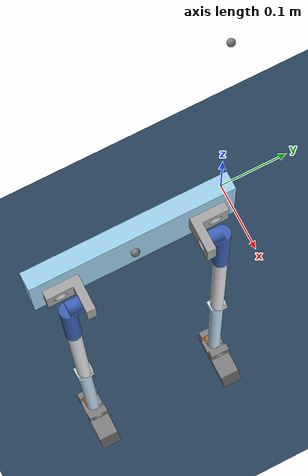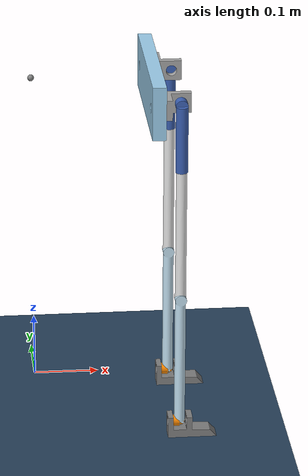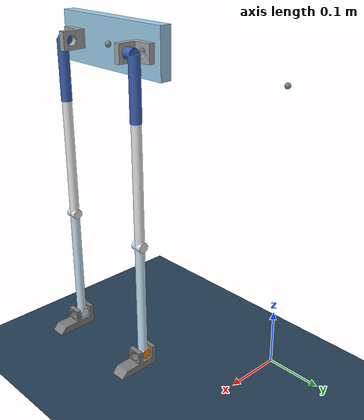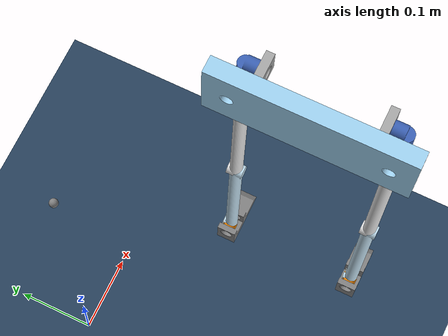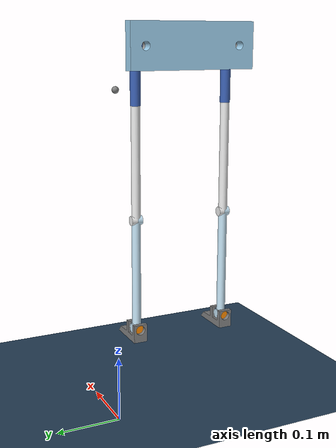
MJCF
<mujoco model="scene">
    <include file="robot.xml"/>

    <visual>
        <headlight diffuse="0.6 0.6 0.6" ambient="0.3 0.3 0.3" specular="0 0 0"/>
        <rgba haze="0.15 0.25 0.35 1"/>
        <global azimuth="160" elevation="-20"/>
    </visual>

    <asset>
        <texture type="skybox" builtin="gradient" rgb1="0.3 0.5 0.7" rgb2="0 0 0" width="512" height="3072"/>
        <texture type="2d" name="groundplane" builtin="checker" mark="edge" rgb1="0.2 0.3 0.4" rgb2="0.1 0.2 0.3"
            markrgb="0.8 0.8 0.8" width="300" height="300"/>
        <material name="groundplane" texture="groundplane" texuniform="true" texrepeat="5 5" reflectance="0.2"/>
    </asset>

    <worldbody>
        <body name="floor">
            <light pos="0 0 3.5" dir="0 0 -1" directional="true"/>
            <geom name="floor" size="0 0 0.05" pos="0 0 0" type="plane" material="groundplane"/>
        </body>
    </worldbody>

    <keyframe>
        <key name="home"
            qpos="
    0 0 0.5
    1 0 0 0
    0.0
    0.0
    0.0
    0.0
    0.0
    0.0
    0.0
    0.0
    0.0
    0.0
    0.0
    0.0
"
            ctrl="
    0.0
    0.0
    0.0
    0.0
    0.0
    0.0
    0.0
    0.0
    0.0
    0.0
    0.0
    0.0
          "/>
    </keyframe>
</mujoco>

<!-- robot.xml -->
<!-- Generated using onshape-to-robot -->
<!-- OnShape document_id: e804ad521de5849fb5d906f3 -->
<mujoco model="hopejr">
    <option iterations="1" ls_iterations="5">
        <flag eulerdamp="disable"/>
    </option>
    <compiler angle="radian" meshdir="assets"/>
    <default>
        <default class="hopejr">
            <joint damping="0.5" frictionloss="0.1" armature="0.02"/>
            <position kp="10"/>
            <geom contype="0" conaffinity="0"/>
        </default>
    </default>
    <worldbody>
        <!-- Link part_1 -->
        <body name="part_1" pos="0 0 0.5" quat="1 0 0 0" childclass="hopejr">
            <freejoint name="part_1_freejoint"/>
            <site name="imu" pos="0 0 0"/>
            <inertial pos="0.165033 -0.204503 0.0575783" mass="0.451164"
                fullinertia="0.00220527 0.000260248 0.0019751 5.24043e-21 2.60518e-20 -7.22333e-20"/>
            <!-- Part part_1 -->
            <!-- Mesh part_1 -->
            <geom type="mesh" pos="0.155033 -0.204503 0.0575783" quat="0.707107 -1.24826e-16 1.11022e-16 0.707107"
                mesh="part_1" material="part_1_material"/>
            <!-- Mesh part_1 -->
            <geom type="mesh" pos="0.155033 -0.204503 0.0575783" quat="0.707107 -1.24826e-16 1.11022e-16 0.707107"
                mesh="part_1" material="part_1_material"/>
            <!-- Frame trunk (dummy link + fixed joint) -->
            <site name="trunk" pos="0.177533 -0.204503 0.0575783" quat="1 -5.55112e-17 2.22045e-16 1.34714e-18"/>
            <!-- Link part_2 -->
            <body name="part_2" pos="0.175033 -0.117003 0.0575783" quat="0.5 -0.5 -0.5 0.5">
                <!-- Joint from part_1 to part_2 -->
                <joint name="left_hip_roll" type="hinge" range="-0.7853981633974483 0.7853981633974483"/>
                <inertial pos="-0.0116006 2.25352e-19 -0.0131167" mass="0.0215278"
                    fullinertia="4.88403e-06 6.00093e-06 4.91185e-06 1.27448e-37 -1.46767e-06 -3.09513e-38"/>
                <!-- Part part_2 -->
                <!-- Mesh part_2 -->
                <geom type="mesh" pos="-0.0875 -1.38778e-17 0.02" quat="0.707107 0.707107 -0 -2.79664e-35" mesh="part_2"
                    material="part_2_material"/>
                <!-- Mesh part_2 -->
                <geom type="mesh" pos="-0.0875 -1.38778e-17 0.02" quat="0.707107 0.707107 -0 -2.79664e-35" mesh="part_2"
                    material="part_2_material"/>
                <!-- Link part_3 -->
                <body name="part_3" pos="-0.015 -1.38778e-17 -0.025" quat="0.707107 -4.15832e-16 -0.707107 -8.88178e-16">
                    <!-- Joint from part_2 to part_3 -->
                    <joint name="left_hip_pitch" type="hinge" range="-0.3490658503988659 1.5707963267948966"/>
                    <inertial pos="3.40913e-09 0.0448354 -0.0141247" mass="0.0353649"
                        fullinertia="3.59567e-05 1.66969e-06 3.57291e-05 1.41653e-11 2.91851e-11 1.40753e-06"/>
                    <!-- Part part_3 -->
                    <!-- Mesh part_3 -->
                    <geom type="mesh" pos="0.045 -6.245e-17 0.0725" quat="0.5 0.5 0.5 -0.5" mesh="part_3"
                        material="part_3_material"/>
                    <!-- Mesh part_3 -->
                    <geom type="mesh" pos="0.045 -6.245e-17 0.0725" quat="0.5 0.5 0.5 -0.5" mesh="part_3"
                        material="part_3_material"/>
                    <!-- Link part_4 -->
                    <body name="part_4" pos="0 0.1 -0.015" quat="0.5 0.5 0.5 -0.5">
                        <!-- Joint from part_3 to part_4 -->
                        <joint name="left_hip_yaw" type="hinge" range="-2.6179938779914944 2.6179938779914944"/>
                        <inertial pos="0.000209384 8.57718e-09 -0.103723" mass="0.0521727"
                            fullinertia="0.000187482 0.00018752 1.72388e-06 -7.06323e-13 1.06442e-06 3.38151e-11"/>
                        <!-- Part part_4 -->
                        <!-- Mesh part_4 -->
                        <geom type="mesh" pos="-0.0875 0.045 0.1" quat="1 0 -1.44284e-18 -3.65021e-20" mesh="part_4"
                            material="part_4_material"/>
                        <!-- Mesh part_4 -->
                        <geom type="mesh" pos="-0.0875 0.045 0.1" quat="1 0 -1.44284e-18 -3.65021e-20" mesh="part_4"
                            material="part_4_material"/>
                        <!-- Link part_5 -->
                        <body name="part_5" pos="0 0 -0.2" quat="0.5 0.5 0.5 0.5">
                            <!-- Joint from part_4 to part_5 -->
                            <joint name="left_knee" type="hinge" range="0.0 1.5707963267948966"/>
                            <inertial pos="-4.29344e-08 -0.1 1.42274e-08" mass="0.0540806"
                                fullinertia="0.000208137 1.84387e-06 0.000208057 7.1479e-11 9.65571e-12 2.21017e-06"/>
                            <!-- Part part_5 -->
                            <!-- Mesh part_5 -->
                            <geom type="mesh" pos="0.045 0.3 -0.0875" quat="0.5 -0.5 -0.5 -0.5" mesh="part_5"
                                material="part_5_material"/>
                            <!-- Mesh part_5 -->
                            <geom type="mesh" pos="0.045 0.3 -0.0875" quat="0.5 -0.5 -0.5 -0.5" mesh="part_5"
                                material="part_5_material"/>
                            <!-- Link part_6 -->
                            <body name="part_6" pos="4.16334e-16 -0.2 0.01"
                                quat="5.53064e-17 -5.20417e-18 1.10818e-16 1">
                                <!-- Joint from part_5 to part_6 -->
                                <joint name="left_ankle_pitch" type="hinge"
                                    range="-1.5707963267948966 1.5707963267948966"/>
                                <inertial pos="-0.00222383 0 -0.00777617" mass="0.00465095"
                                    fullinertia="1.90809e-07 2.06197e-07 1.90809e-07 2.10229e-12 -3.77922e-08 2.10229e-12"/>
                                <!-- Part part_6 -->
                                <!-- Mesh part_6 -->
                                <geom type="mesh" pos="0.045 -0.5 0.0775" quat="0.5 0.5 0.5 -0.5" mesh="part_6"
                                    material="part_6_material"/>
                                <!-- Mesh part_6 -->
                                <geom type="mesh" pos="0.045 -0.5 0.0775" quat="0.5 0.5 0.5 -0.5" mesh="part_6"
                                    material="part_6_material"/>
                                <!-- Link part_7 -->
                                <body name="part_7" pos="-0.01 0 -0.01"
                                    quat="0.707107 1.03325e-16 0.707107 -2.22045e-16">
                                    <!-- Joint from part_6 to part_7 -->
                                    <joint name="left_ankle_roll" type="hinge"
                                        range="-0.7853981633974483 0.7853981633974483"/>
                                    <inertial pos="-3.76166e-09 0.0136645 0.0226826" mass="0.0306953"
                                        fullinertia="1.34934e-05 1.34204e-05 3.57951e-06 -3.33658e-12 3.03112e-13 -1.34506e-06"/>
                                    <!-- Part part_7 -->
                                    <!-- Mesh part_7 -->
                                    <geom type="mesh" pos="-0.0875 -0.5 0.055" quat="0.707107 0.707107 -0 1.96673e-33"
                                        mesh="part_7" material="part_7_material"/>
                                    <!-- Mesh part_7 -->
                                    <geom type="mesh" pos="-0.0875 -0.5 0.055" quat="0.707107 0.707107 -0 1.96673e-33"
                                        mesh="part_7" material="part_7_material" name="left_foot_bottom" contype="0"
                                        conaffinity="1" solimp="0.015 1 0.031" friction="0.8 0.02 0.01"/>
                                    <!-- Frame left_foot (dummy link + fixed joint) -->
                                    <site name="left_foot" pos="-5.55112e-17 0.0200185 0.028571" quat="0.5 0.5 -0.5 0.5"/>
                                </body>
                            </body>
                        </body>
                    </body>
                </body>
            </body>
            <!-- Link part_2_2 -->
            <body name="part_2_2" pos="0.175033 -0.292003 0.0575783" quat="0.5 0.5 -0.5 -0.5">
                <!-- Joint from part_1 to part_2_2 -->
                <joint name="right_hip_roll" type="hinge" range="-0.7853981633974483 0.7853981633974483"/>
                <inertial pos="-0.0116006 2.25352e-19 -0.0131167" mass="0.0215278"
                    fullinertia="4.88403e-06 6.00093e-06 4.91185e-06 0 -1.46767e-06 0"/>
                <!-- Part part_2_2 -->
                <!-- Mesh part_2_2 -->
                <geom type="mesh" pos="-0.0875 -1.38778e-17 0.02" quat="0.707107 0.707107 0 1.0358e-34" mesh="part_2"
                    material="part_2_material"/>
                <!-- Mesh part_2_2 -->
                <geom type="mesh" pos="-0.0875 -1.38778e-17 0.02" quat="0.707107 0.707107 0 1.0358e-34" mesh="part_2"
                    material="part_2_material"/>
                <!-- Link part_3_2 -->
                <body name="part_3_2" pos="-0.015 4.85723e-17 -0.025" quat="3.23091e-16 -0.707107 4.44089e-16 0.707107">
                    <!-- Joint from part_2_2 to part_3_2 -->
                    <joint name="right_hip_pitch" type="hinge" range="-1.5707963267948966 0.3490658503988659"/>
                    <inertial pos="3.40913e-09 0.0448354 -0.0141247" mass="0.0353649"
                        fullinertia="3.59567e-05 1.66969e-06 3.57291e-05 1.41653e-11 2.91851e-11 1.40753e-06"/>
                    <!-- Part part_3_2 -->
                    <!-- Mesh part_3_2 -->
                    <geom type="mesh" pos="0.045 -6.245e-17 0.0725" quat="0.5 0.5 0.5 -0.5" mesh="part_3"
                        material="part_3_material"/>
                    <!-- Mesh part_3_2 -->
                    <geom type="mesh" pos="0.045 -6.245e-17 0.0725" quat="0.5 0.5 0.5 -0.5" mesh="part_3"
                        material="part_3_material"/>
                    <!-- Link part_4_2 -->
                    <body name="part_4_2" pos="8.32667e-16 0.1 -0.015" quat="0.5 0.5 -0.5 0.5">
                        <!-- Joint from part_3_2 to part_4_2 -->
                        <joint name="right_hip_yaw" type="hinge" range="-2.6179938779914935 2.6179938779914953"/>
                        <inertial pos="0.000209384 8.57718e-09 -0.103723" mass="0.0521727"
                            fullinertia="0.000187482 0.00018752 1.72388e-06 -7.06323e-13 1.06442e-06 3.38151e-11"/>
                        <!-- Part part_4_2 -->
                        <!-- Mesh part_4_2 -->
                        <geom type="mesh" pos="-0.0875 0.045 0.1" quat="1 0 0 0" mesh="part_4"
                            material="part_4_material"/>
                        <!-- Mesh part_4_2 -->
                        <geom type="mesh" pos="-0.0875 0.045 0.1" quat="1 0 0 0" mesh="part_4"
                            material="part_4_material"/>
                        <!-- Link part_5_2 -->
                        <body name="part_5_2" pos="0 5.55112e-17 -0.2" quat="0.5 0.5 0.5 0.5">
                            <!-- Joint from part_4_2 to part_5_2 -->
                            <joint name="right_knee" type="hinge" range="0.0 1.5707963267948966"/>
                            <inertial pos="-4.29344e-08 -0.1 1.42274e-08" mass="0.0540806"
                                fullinertia="0.000208137 1.84387e-06 0.000208057 7.1479e-11 9.65571e-12 2.21017e-06"/>
                            <!-- Part part_5_2 -->
                            <!-- Mesh part_5_2 -->
                            <geom type="mesh" pos="0.045 0.3 -0.0875" quat="0.5 -0.5 -0.5 -0.5" mesh="part_5"
                                material="part_5_material"/>
                            <!-- Mesh part_5_2 -->
                            <geom type="mesh" pos="0.045 0.3 -0.0875" quat="0.5 -0.5 -0.5 -0.5" mesh="part_5"
                                material="part_5_material"/>
                            <!-- Link part_6_2 -->
                            <body name="part_6_2" pos="1.4988e-15 -0.2 0.01" quat="1.35778e-32 0 -6.71617e-19 -1">
                                <!-- Joint from part_5_2 to part_6_2 -->
                                <joint name="right_ankle_pitch" type="hinge"
                                    range="-1.5707963267948966 1.5707963267948966"/>
                                <inertial pos="-0.00222383 5.55112e-17 -0.00777617" mass="0.00465095"
                                    fullinertia="1.90809e-07 2.06197e-07 1.90809e-07 2.10229e-12 -3.77922e-08 2.10229e-12"/>
                                <!-- Part part_6_2 -->
                                <!-- Mesh part_6_2 -->
                                <geom type="mesh" pos="0.045 -0.5 0.0775" quat="0.5 0.5 0.5 -0.5" mesh="part_6"
                                    material="part_6_material"/>
                                <!-- Mesh part_6_2 -->
                                <geom type="mesh" pos="0.045 -0.5 0.0775" quat="0.5 0.5 0.5 -0.5" mesh="part_6"
                                    material="part_6_material"/>
                                <!-- Link part_7_2 -->
                                <body name="part_7_2" pos="-0.01 1.11022e-16 -0.01"
                                    quat="0.707107 -1.54701e-17 0.707107 -1.11022e-16">
                                    <!-- Joint from part_6_2 to part_7_2 -->
                                    <joint name="right_ankle_roll" type="hinge"
                                        range="-0.7853981633974474 0.7853981633974492"/>
                                    <inertial pos="-3.76166e-09 0.0136645 0.0226826" mass="0.0306953"
                                        fullinertia="1.34934e-05 1.34204e-05 3.57951e-06 -3.33658e-12 3.03112e-13 -1.34506e-06"/>
                                    <!-- Part part_7_2 -->
                                    <!-- Mesh part_7_2 -->
                                    <geom type="mesh" pos="-0.0875 -0.5 0.055" quat="0.707107 0.707107 -0 8.03651e-33"
                                        mesh="part_7" material="part_7_material"/>
                                    <!-- Mesh part_7_2 -->
                                    <geom type="mesh" pos="-0.0875 -0.5 0.055" quat="0.707107 0.707107 -0 8.03651e-33"
                                        mesh="part_7" material="part_7_material" name="right_foot_bottom" contype="0"
                                        conaffinity="1" solimp="0.015 1 0.031" friction="0.8 0.02 0.01"/>
                                    <!-- Frame right_foot (dummy link + fixed joint) -->
                                    <site name="right_foot" pos="-5.55112e-17 0.0200185 0.028571"
                                        quat="0.5 0.5 -0.5 0.5"/>
                                </body>
                            </body>
                        </body>
                    </body>
                </body>
            </body>
        </body>
    </worldbody>
    <asset>
        <mesh file="part_5.stl"/>
        <mesh file="part_3.stl"/>
        <mesh file="part_2.stl"/>
        <mesh file="part_4.stl"/>
        <mesh file="part_1.stl"/>
        <mesh file="part_6.stl"/>
        <mesh file="part_7.stl"/>
        <material name="part_1_material" rgba="0.615686 0.811765 0.929412 1"/>
        <material name="part_2_material" rgba="0.647059 0.647059 0.647059 1"/>
        <material name="part_3_material" rgba="0.231373 0.380392 0.705882 1"/>
        <material name="part_4_material" rgba="0.917647 0.917647 0.917647 1"/>
        <material name="part_5_material" rgba="0.768627 0.886275 0.952941 1"/>
        <material name="part_6_material" rgba="0.972549 0.529412 0.00392157 1"/>
        <material name="part_7_material" rgba="0.498039 0.498039 0.498039 1"/>
    </asset>
    <actuator>
        <position class="hopejr" name="left_hip_roll" joint="left_hip_roll"
            ctrlrange="-0.7853981633974483 0.7853981633974483"/>
        <position class="hopejr" name="left_hip_pitch" joint="left_hip_pitch"
            ctrlrange="-0.3490658503988659 1.5707963267948966"/>
        <position class="hopejr" name="left_hip_yaw" joint="left_hip_yaw"
            ctrlrange="-2.6179938779914944 2.6179938779914944"/>
        <position class="hopejr" name="left_knee" joint="left_knee" ctrlrange="0.0 1.5707963267948966"/>
        <position class="hopejr" name="left_ankle_pitch" joint="left_ankle_pitch"
            ctrlrange="-1.5707963267948966 1.5707963267948966"/>
        <position class="hopejr" name="left_ankle_roll" joint="left_ankle_roll"
            ctrlrange="-0.7853981633974483 0.7853981633974483"/>
        <position class="hopejr" name="right_hip_roll" joint="right_hip_roll"
            ctrlrange="-0.7853981633974483 0.7853981633974483"/>
        <position class="hopejr" name="right_hip_pitch" joint="right_hip_pitch"
            ctrlrange="-1.5707963267948966 0.3490658503988659"/>
        <position class="hopejr" name="right_hip_yaw" joint="right_hip_yaw"
            ctrlrange="-2.6179938779914935 2.6179938779914953"/>
        <position class="hopejr" name="right_knee" joint="right_knee" ctrlrange="0.0 1.5707963267948966"/>
        <position class="hopejr" name="right_ankle_pitch" joint="right_ankle_pitch"
            ctrlrange="-1.5707963267948966 1.5707963267948966"/>
        <position class="hopejr" name="right_ankle_roll" joint="right_ankle_roll"
            ctrlrange="-0.7853981633974474 0.7853981633974492"/>
    </actuator>
    <sensor>
        <gyro site="imu" name="gyro"/>
        <velocimeter site="imu" name="local_linvel"/>
        <accelerometer site="imu" name="accelerometer"/>
        <framezaxis objtype="site" objname="imu" name="upvector"/>
        <framexaxis objtype="site" objname="imu" name="forwardvector"/>
        <framelinvel objtype="site" objname="imu" name="global_linvel"/>
        <frameangvel objtype="site" objname="imu" name="global_angvel"/>
        <framepos objtype="site" objname="imu" name="position"/>
        <framequat objtype="site" objname="imu" name="orientation"/>
        <framelinvel objtype="site" objname="right_foot" name="right_foot_global_linvel"/>
        <framelinvel objtype="site" objname="left_foot" name="left_foot_global_linvel"/>
        <framexaxis objtype="site" objname="left_foot" name="left_foot_upvector"/>
        <framexaxis objtype="site" objname="right_foot" name="right_foot_upvector"/>
        <framepos objtype="site" objname="left_foot" name="left_foot_pos"/>
        <framepos objtype="site" objname="right_foot" name="right_foot_pos"/>
    </sensor>
    <equality/>
</mujoco>
